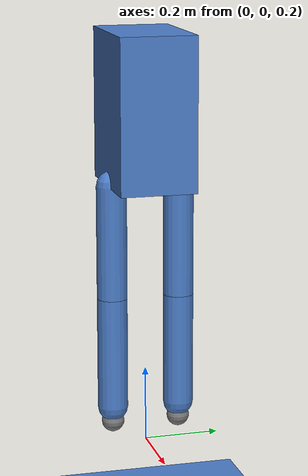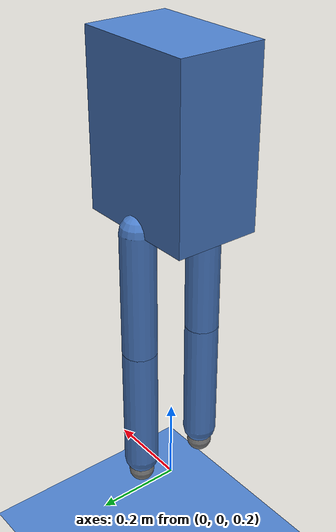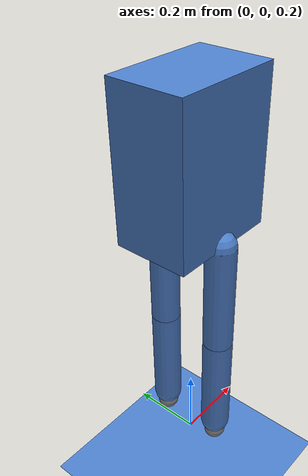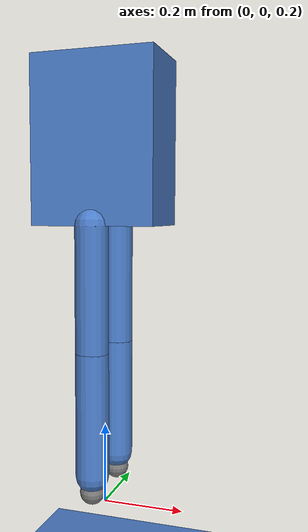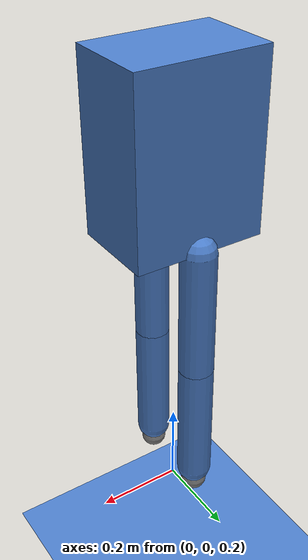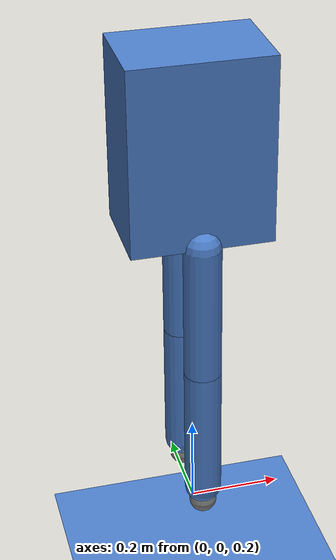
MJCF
<mujoco model="floating_biped_lite">
  <compiler angle="radian"/>
  <option timestep="0.002"/>
  <default>
    <joint type="hinge" axis="0 1 0" limited="true" range="-1.5 1.5" damping=".2"/>
    <geom type="capsule" size=".04" rgba=".3 .5 .8 1"/>
    <motor ctrlrange="-50 50" ctrllimited="true"/>
  </default>
  <worldbody>
    <geom name="floor" type="plane" size="2 2 .1"/>
    <body name="torso" pos="0 0 1.1">
      <freejoint name="base"/>
      <geom type="box" size=".15 .10 .20" mass="8"/>
      <body name="left_thigh" pos="0 .09 -.2">
        <joint name="left_hip"/><geom fromto="0 0 0 0 0 -.3" mass="2"/>
        <body name="left_shin" pos="0 0 -.3">
          <joint name="left_knee" range="0 2.4"/><geom fromto="0 0 0 0 0 -.3" mass="1.5"/>
          <site name="left_foot" pos="0 0 -.34" size=".03"/>
        </body>
      </body>
      <body name="right_thigh" pos="0 -.09 -.2">
        <joint name="right_hip"/><geom fromto="0 0 0 0 0 -.3" mass="2"/>
        <body name="right_shin" pos="0 0 -.3">
          <joint name="right_knee" range="0 2.4"/><geom fromto="0 0 0 0 0 -.3" mass="1.5"/>
          <site name="right_foot" pos="0 0 -.34" size=".03"/>
        </body>
      </body>
    </body>
  </worldbody>
  <actuator>
    <motor name="left_hip_motor" joint="left_hip"/>
    <motor name="left_knee_motor" joint="left_knee"/>
    <motor name="right_hip_motor" joint="right_hip"/>
    <motor name="right_knee_motor" joint="right_knee"/>
  </actuator>
</mujoco>
